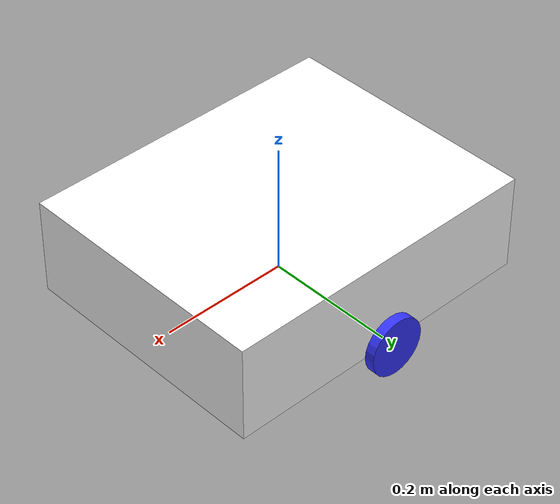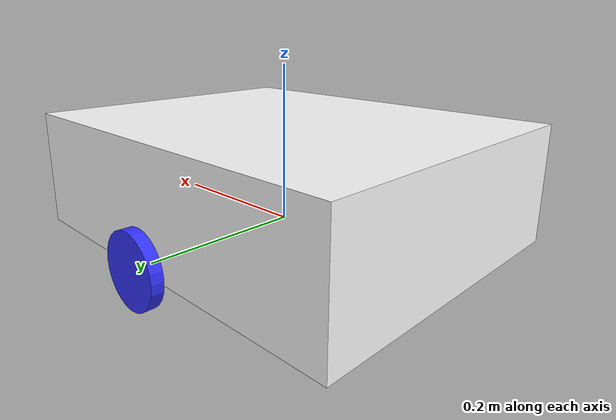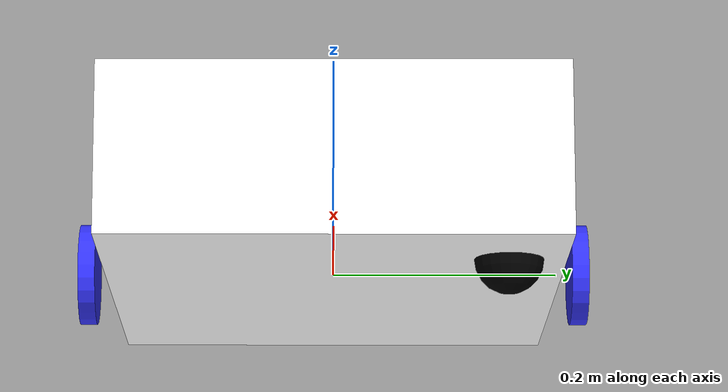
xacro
<?xml version="1.0"?>
<robot xmlns:xacro="http://www.ros.org/wiki/xacro">

    <xacro:include filename="inertial_macros.xacro" />

    <material name="white">
        <color rgba="1 1 1 1" />
    </material>

    <material name="orange">
        <color rgba="1 0.3 0.1 1" />
    </material>

    <material name="blue">
        <color rgba="0.2 0.2 1 1" />
    </material>

    <material name="black">
        <color rgba="0 0 0 1" />
    </material>

    <material name="red">
        <color rgba="1 0 0 1" />
    </material>

    <!-- BASE LINK -->

    <link name="base_link">

    </link>

    <joint name="chassis_joint" type="fixed">
        <parent link="base_link" />
        <child link="chassis" />
        <origin xyz="-0.25 0 -0.0175" />
    </joint>

    <!-- CHASSIS LINK -->

    <link name="chassis">
        <visual>
            <origin xyz="0.25 0 0.075" />
            <geometry>
                <box size="0.5 0.4 0.15" />
            </geometry>
            <material name="white" />
        </visual>
        <collision>
            <origin xyz="0.25 0 0.075" />
            <geometry>
                <box size="0.5 0.4 0.15" />
            </geometry>
        </collision>
        <xacro:inertial_box mass="0.5" x="0.5" y="0.4" z="0.15">
            <origin xyz="0.25 0.2 0.075" rpy="0 0 0" />
        </xacro:inertial_box>
    </link>

    <gazebo reference="chassis">
        <material>
            Gazebo/White
        </material>
    </gazebo>

    <!-- LEFT WHEEL LINK -->
    <joint name="left_wheel_joint" type="continuous">
        <parent link="base_link" />
        <child link="left_wheel" />
        <origin xyz="0 0.22 0" rpy="-${pi/2} 0 0" />
        <axis xyz="0 0 1" />
    </joint>

    <link name="left_wheel">
        <visual>
            <geometry>
                <cylinder radius="0.045" length="0.015" />
            </geometry>
            <material name="blue" />
        </visual>
        <collision>
            <geometry>
                <cylinder radius="0.045" length="0.015" />
            </geometry>
        </collision>
        <xacro:inertial_cylinder mass="0.1" length="0.015" radius="0.045">
            <origin xyz="0 0 0" rpy="0 0 0" />
        </xacro:inertial_cylinder>
    </link>

    <gazebo reference="left_wheel">
        <material>
            Gazebo/Blue
        </material>
    </gazebo>

    <!-- RIGHT WHEEL LINK -->
    <joint name="right_wheel_joint" type="continuous">
        <parent link="base_link" />
        <child link="right_wheel" />
        <origin xyz="0 -0.22 0" rpy="${pi/2} 0 0" />
        <axis xyz="0 0 -1" />
    </joint>

    <link name="right_wheel">
        <visual>
            <geometry>
                <cylinder radius="0.045" length="0.015" />
            </geometry>
            <material name="blue" />
        </visual>
        <collision>
            <geometry>
                <cylinder radius="0.045" length="0.015" />
            </geometry>
        </collision>
        <xacro:inertial_cylinder mass="0.1" length="0.015" radius="0.045">
            <origin xyz="0 0 0" rpy="0 0 0" />
        </xacro:inertial_cylinder>
    </link>

    <gazebo reference="right_wheel">
        <material>
            Gazebo/Blue
        </material>
    </gazebo>

    <!-- CASTER WHEEL -->

    <joint name="caster_wheel_fontleft_joint" type="fixed">
        <parent link="chassis" />
        <child link="caster_wheel_fontleft" />
        <origin xyz="0.4 0.15 0" />
    </joint>

    <link name="caster_wheel_fontleft">
        <visual>
            <geometry>
                <sphere radius="0.03" />
            </geometry>
            <material name="black" />
        </visual>
        <collision>
            <geometry>
                <sphere radius="0.03" />
            </geometry>
        </collision>
        <xacro:inertial_sphere mass="0.03" radius="0.03">
            <origin xyz="0 0 0" rpy="0 0 0" />
        </xacro:inertial_sphere>
    </link>

    <gazebo reference="caster_wheel_fontleft">
        <material>
            Gazebo/Black
        </material>
        <mu1 value="0.001" />
        <mu2 value="0.001" />
    </gazebo>

</robot>
